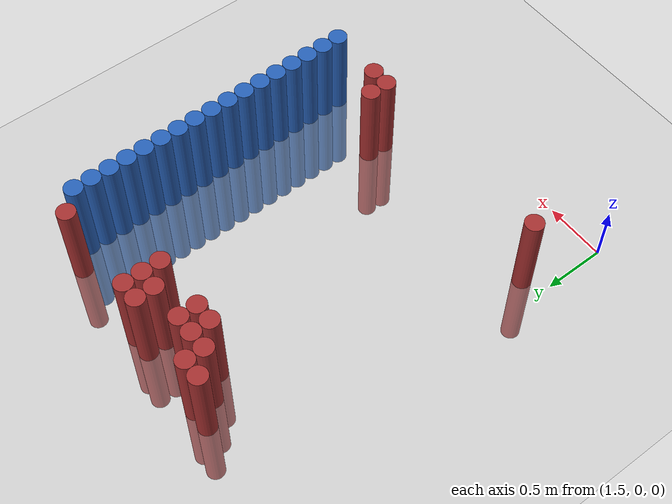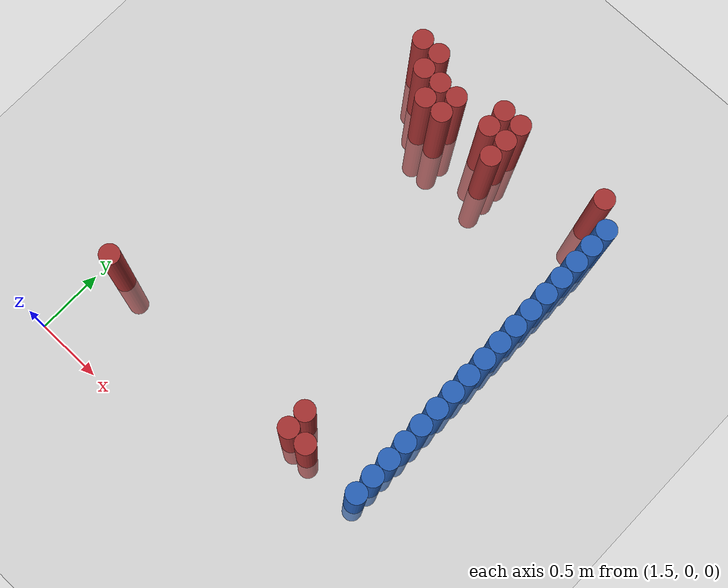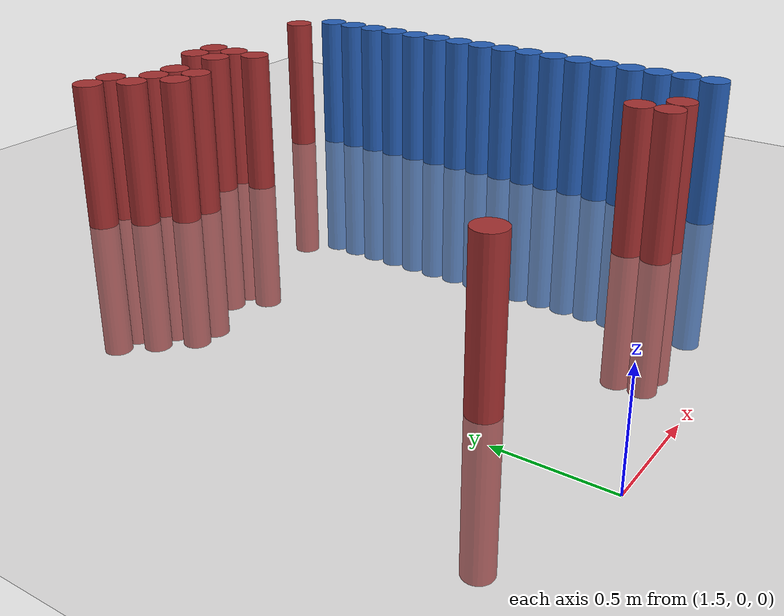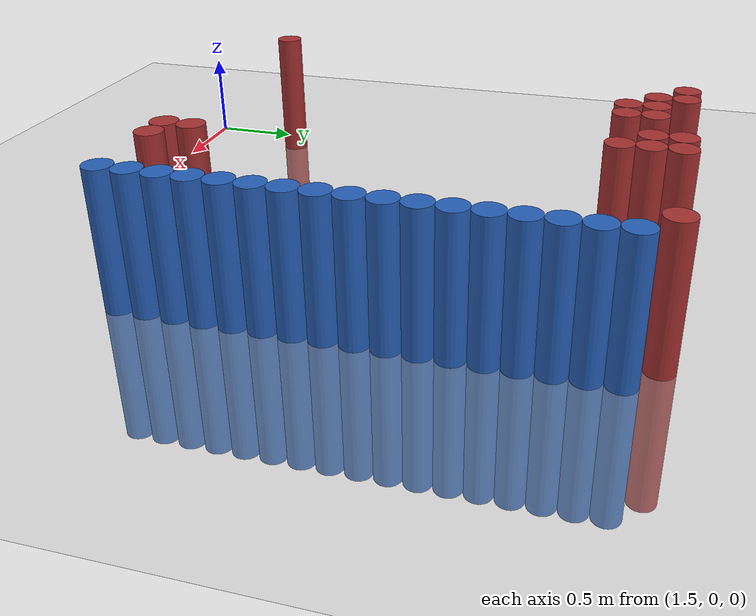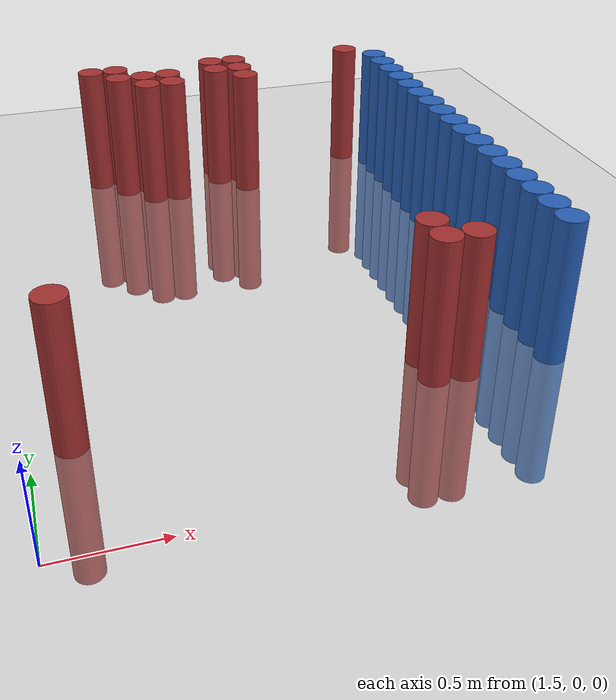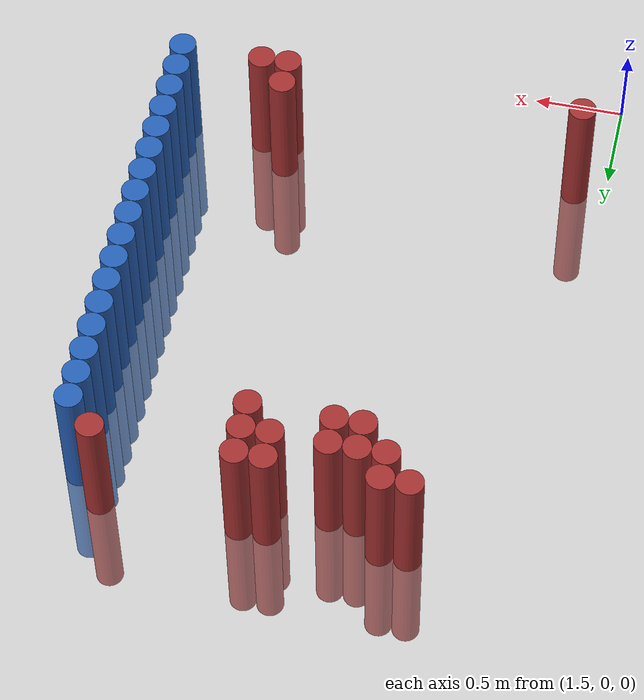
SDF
<sdf version="1.6">
 <world name="default">
  <model name="ground_plane">
   <static>1</static>
   <link name="link">
    <collision name="collision">
     <geometry><plane><normal>0 0 1</normal><size>100 100</size></plane></geometry>
     <surface><friction><ode><mu>100</mu><mu2>50</mu2></ode></friction></surface>
    </collision>
    <visual name="visual">
     <cast_shadows>0</cast_shadows>
     <geometry><plane><normal>0 0 1</normal><size>100 100</size></plane></geometry>
     <material>
      <script><uri>file://media/materials/scripts/gazebo.material</uri><name>Gazebo/Grey</name></script>
     </material>
    </visual>
   </link>
  </model>
  <model name="unit_cylinder_124">
   <static>1</static>
   <pose>3.925000 0.775000 0.000000 0.000000 0.000000 0.000000</pose>
   <link name="link">
    <inertial>
     <mass>1</mass>
     <inertia><ixx>0.145833</ixx><ixy>0</ixy><ixz>0</ixz><iyy>0.145833</iyy><iyz>0</iyz><izz>0.125</izz></inertia>
    </inertial>
    <collision name="collision">
     <geometry><cylinder><radius>0.075000</radius><length>1.5</length></cylinder></geometry>
    </collision>
    <visual name="visual">
     <geometry><cylinder><radius>0.075000</radius><length>1.5</length></cylinder></geometry>
     <material>
      <ambient>0.152000 0.379000 0.720000 1</ambient>
      <diffuse>0.152000 0.379000 0.720000 1</diffuse>
     </material>
     <material>
      <script><name>Gazebo/Grey</name><uri>file://media/materials/scripts/gazebo.material</uri></script>
     </material>
    </visual>
   </link>
  </model>
  <model name="unit_cylinder_126">
   <static>1</static>
   <pose>3.925000 0.925000 0.000000 0.000000 0.000000 0.000000</pose>
   <link name="link">
    <inertial>
     <mass>1</mass>
     <inertia><ixx>0.145833</ixx><ixy>0</ixy><ixz>0</ixz><iyy>0.145833</iyy><iyz>0</iyz><izz>0.125</izz></inertia>
    </inertial>
    <collision name="collision">
     <geometry><cylinder><radius>0.075000</radius><length>1.5</length></cylinder></geometry>
    </collision>
    <visual name="visual">
     <geometry><cylinder><radius>0.075000</radius><length>1.5</length></cylinder></geometry>
     <material>
      <ambient>0.152000 0.379000 0.720000 1</ambient>
      <diffuse>0.152000 0.379000 0.720000 1</diffuse>
     </material>
     <material>
      <script><name>Gazebo/Grey</name><uri>file://media/materials/scripts/gazebo.material</uri></script>
     </material>
    </visual>
   </link>
  </model>
  <model name="unit_cylinder_128">
   <static>1</static>
   <pose>3.925000 1.075000 0.000000 0.000000 0.000000 0.000000</pose>
   <link name="link">
    <inertial>
     <mass>1</mass>
     <inertia><ixx>0.145833</ixx><ixy>0</ixy><ixz>0</ixz><iyy>0.145833</iyy><iyz>0</iyz><izz>0.125</izz></inertia>
    </inertial>
    <collision name="collision">
     <geometry><cylinder><radius>0.075000</radius><length>1.5</length></cylinder></geometry>
    </collision>
    <visual name="visual">
     <geometry><cylinder><radius>0.075000</radius><length>1.5</length></cylinder></geometry>
     <material>
      <ambient>0.152000 0.379000 0.720000 1</ambient>
      <diffuse>0.152000 0.379000 0.720000 1</diffuse>
     </material>
     <material>
      <script><name>Gazebo/Grey</name><uri>file://media/materials/scripts/gazebo.material</uri></script>
     </material>
    </visual>
   </link>
  </model>
  <model name="unit_cylinder_130">
   <static>1</static>
   <pose>3.925000 1.225000 0.000000 0.000000 0.000000 0.000000</pose>
   <link name="link">
    <inertial>
     <mass>1</mass>
     <inertia><ixx>0.145833</ixx><ixy>0</ixy><ixz>0</ixz><iyy>0.145833</iyy><iyz>0</iyz><izz>0.125</izz></inertia>
    </inertial>
    <collision name="collision">
     <geometry><cylinder><radius>0.075000</radius><length>1.5</length></cylinder></geometry>
    </collision>
    <visual name="visual">
     <geometry><cylinder><radius>0.075000</radius><length>1.5</length></cylinder></geometry>
     <material>
      <ambient>0.152000 0.379000 0.720000 1</ambient>
      <diffuse>0.152000 0.379000 0.720000 1</diffuse>
     </material>
     <material>
      <script><name>Gazebo/Grey</name><uri>file://media/materials/scripts/gazebo.material</uri></script>
     </material>
    </visual>
   </link>
  </model>
  <model name="unit_cylinder_132">
   <static>1</static>
   <pose>3.925000 1.375000 0.000000 0.000000 0.000000 0.000000</pose>
   <link name="link">
    <inertial>
     <mass>1</mass>
     <inertia><ixx>0.145833</ixx><ixy>0</ixy><ixz>0</ixz><iyy>0.145833</iyy><iyz>0</iyz><izz>0.125</izz></inertia>
    </inertial>
    <collision name="collision">
     <geometry><cylinder><radius>0.075000</radius><length>1.5</length></cylinder></geometry>
    </collision>
    <visual name="visual">
     <geometry><cylinder><radius>0.075000</radius><length>1.5</length></cylinder></geometry>
     <material>
      <ambient>0.152000 0.379000 0.720000 1</ambient>
      <diffuse>0.152000 0.379000 0.720000 1</diffuse>
     </material>
     <material>
      <script><name>Gazebo/Grey</name><uri>file://media/materials/scripts/gazebo.material</uri></script>
     </material>
    </visual>
   </link>
  </model>
  <model name="unit_cylinder_134">
   <static>1</static>
   <pose>3.925000 1.525000 0.000000 0.000000 0.000000 0.000000</pose>
   <link name="link">
    <inertial>
     <mass>1</mass>
     <inertia><ixx>0.145833</ixx><ixy>0</ixy><ixz>0</ixz><iyy>0.145833</iyy><iyz>0</iyz><izz>0.125</izz></inertia>
    </inertial>
    <collision name="collision">
     <geometry><cylinder><radius>0.075000</radius><length>1.5</length></cylinder></geometry>
    </collision>
    <visual name="visual">
     <geometry><cylinder><radius>0.075000</radius><length>1.5</length></cylinder></geometry>
     <material>
      <ambient>0.152000 0.379000 0.720000 1</ambient>
      <diffuse>0.152000 0.379000 0.720000 1</diffuse>
     </material>
     <material>
      <script><name>Gazebo/Grey</name><uri>file://media/materials/scripts/gazebo.material</uri></script>
     </material>
    </visual>
   </link>
  </model>
  <model name="unit_cylinder_136">
   <static>1</static>
   <pose>3.925000 1.675000 0.000000 0.000000 0.000000 0.000000</pose>
   <link name="link">
    <inertial>
     <mass>1</mass>
     <inertia><ixx>0.145833</ixx><ixy>0</ixy><ixz>0</ixz><iyy>0.145833</iyy><iyz>0</iyz><izz>0.125</izz></inertia>
    </inertial>
    <collision name="collision">
     <geometry><cylinder><radius>0.075000</radius><length>1.5</length></cylinder></geometry>
    </collision>
    <visual name="visual">
     <geometry><cylinder><radius>0.075000</radius><length>1.5</length></cylinder></geometry>
     <material>
      <ambient>0.152000 0.379000 0.720000 1</ambient>
      <diffuse>0.152000 0.379000 0.720000 1</diffuse>
     </material>
     <material>
      <script><name>Gazebo/Grey</name><uri>file://media/materials/scripts/gazebo.material</uri></script>
     </material>
    </visual>
   </link>
  </model>
  <model name="unit_cylinder_138">
   <static>1</static>
   <pose>3.925000 1.825000 0.000000 0.000000 0.000000 0.000000</pose>
   <link name="link">
    <inertial>
     <mass>1</mass>
     <inertia><ixx>0.145833</ixx><ixy>0</ixy><ixz>0</ixz><iyy>0.145833</iyy><iyz>0</iyz><izz>0.125</izz></inertia>
    </inertial>
    <collision name="collision">
     <geometry><cylinder><radius>0.075000</radius><length>1.5</length></cylinder></geometry>
    </collision>
    <visual name="visual">
     <geometry><cylinder><radius>0.075000</radius><length>1.5</length></cylinder></geometry>
     <material>
      <ambient>0.152000 0.379000 0.720000 1</ambient>
      <diffuse>0.152000 0.379000 0.720000 1</diffuse>
     </material>
     <material>
      <script><name>Gazebo/Grey</name><uri>file://media/materials/scripts/gazebo.material</uri></script>
     </material>
    </visual>
   </link>
  </model>
  <model name="unit_cylinder_140">
   <static>1</static>
   <pose>3.925000 1.975000 0.000000 0.000000 0.000000 0.000000</pose>
   <link name="link">
    <inertial>
     <mass>1</mass>
     <inertia><ixx>0.145833</ixx><ixy>0</ixy><ixz>0</ixz><iyy>0.145833</iyy><iyz>0</iyz><izz>0.125</izz></inertia>
    </inertial>
    <collision name="collision">
     <geometry><cylinder><radius>0.075000</radius><length>1.5</length></cylinder></geometry>
    </collision>
    <visual name="visual">
     <geometry><cylinder><radius>0.075000</radius><length>1.5</length></cylinder></geometry>
     <material>
      <ambient>0.152000 0.379000 0.720000 1</ambient>
      <diffuse>0.152000 0.379000 0.720000 1</diffuse>
     </material>
     <material>
      <script><name>Gazebo/Grey</name><uri>file://media/materials/scripts/gazebo.material</uri></script>
     </material>
    </visual>
   </link>
  </model>
  <model name="unit_cylinder_142">
   <static>1</static>
   <pose>3.925000 2.125000 0.000000 0.000000 0.000000 0.000000</pose>
   <link name="link">
    <inertial>
     <mass>1</mass>
     <inertia><ixx>0.145833</ixx><ixy>0</ixy><ixz>0</ixz><iyy>0.145833</iyy><iyz>0</iyz><izz>0.125</izz></inertia>
    </inertial>
    <collision name="collision">
     <geometry><cylinder><radius>0.075000</radius><length>1.5</length></cylinder></geometry>
    </collision>
    <visual name="visual">
     <geometry><cylinder><radius>0.075000</radius><length>1.5</length></cylinder></geometry>
     <material>
      <ambient>0.152000 0.379000 0.720000 1</ambient>
      <diffuse>0.152000 0.379000 0.720000 1</diffuse>
     </material>
     <material>
      <script><name>Gazebo/Grey</name><uri>file://media/materials/scripts/gazebo.material</uri></script>
     </material>
    </visual>
   </link>
  </model>
  <model name="unit_cylinder_144">
   <static>1</static>
   <pose>3.925000 2.275000 0.000000 0.000000 0.000000 0.000000</pose>
   <link name="link">
    <inertial>
     <mass>1</mass>
     <inertia><ixx>0.145833</ixx><ixy>0</ixy><ixz>0</ixz><iyy>0.145833</iyy><iyz>0</iyz><izz>0.125</izz></inertia>
    </inertial>
    <collision name="collision">
     <geometry><cylinder><radius>0.075000</radius><length>1.5</length></cylinder></geometry>
    </collision>
    <visual name="visual">
     <geometry><cylinder><radius>0.075000</radius><length>1.5</length></cylinder></geometry>
     <material>
      <ambient>0.152000 0.379000 0.720000 1</ambient>
      <diffuse>0.152000 0.379000 0.720000 1</diffuse>
     </material>
     <material>
      <script><name>Gazebo/Grey</name><uri>file://media/materials/scripts/gazebo.material</uri></script>
     </material>
    </visual>
   </link>
  </model>
  <model name="unit_cylinder_146">
   <static>1</static>
   <pose>3.925000 2.425000 0.000000 0.000000 0.000000 0.000000</pose>
   <link name="link">
    <inertial>
     <mass>1</mass>
     <inertia><ixx>0.145833</ixx><ixy>0</ixy><ixz>0</ixz><iyy>0.145833</iyy><iyz>0</iyz><izz>0.125</izz></inertia>
    </inertial>
    <collision name="collision">
     <geometry><cylinder><radius>0.075000</radius><length>1.5</length></cylinder></geometry>
    </collision>
    <visual name="visual">
     <geometry><cylinder><radius>0.075000</radius><length>1.5</length></cylinder></geometry>
     <material>
      <ambient>0.152000 0.379000 0.720000 1</ambient>
      <diffuse>0.152000 0.379000 0.720000 1</diffuse>
     </material>
     <material>
      <script><name>Gazebo/Grey</name><uri>file://media/materials/scripts/gazebo.material</uri></script>
     </material>
    </visual>
   </link>
  </model>
  <model name="unit_cylinder_148">
   <static>1</static>
   <pose>3.925000 2.575000 0.000000 0.000000 0.000000 0.000000</pose>
   <link name="link">
    <inertial>
     <mass>1</mass>
     <inertia><ixx>0.145833</ixx><ixy>0</ixy><ixz>0</ixz><iyy>0.145833</iyy><iyz>0</iyz><izz>0.125</izz></inertia>
    </inertial>
    <collision name="collision">
     <geometry><cylinder><radius>0.075000</radius><length>1.5</length></cylinder></geometry>
    </collision>
    <visual name="visual">
     <geometry><cylinder><radius>0.075000</radius><length>1.5</length></cylinder></geometry>
     <material>
      <ambient>0.152000 0.379000 0.720000 1</ambient>
      <diffuse>0.152000 0.379000 0.720000 1</diffuse>
     </material>
     <material>
      <script><name>Gazebo/Grey</name><uri>file://media/materials/scripts/gazebo.material</uri></script>
     </material>
    </visual>
   </link>
  </model>
  <model name="unit_cylinder_150">
   <static>1</static>
   <pose>3.925000 2.725000 0.000000 0.000000 0.000000 0.000000</pose>
   <link name="link">
    <inertial>
     <mass>1</mass>
     <inertia><ixx>0.145833</ixx><ixy>0</ixy><ixz>0</ixz><iyy>0.145833</iyy><iyz>0</iyz><izz>0.125</izz></inertia>
    </inertial>
    <collision name="collision">
     <geometry><cylinder><radius>0.075000</radius><length>1.5</length></cylinder></geometry>
    </collision>
    <visual name="visual">
     <geometry><cylinder><radius>0.075000</radius><length>1.5</length></cylinder></geometry>
     <material>
      <ambient>0.152000 0.379000 0.720000 1</ambient>
      <diffuse>0.152000 0.379000 0.720000 1</diffuse>
     </material>
     <material>
      <script><name>Gazebo/Grey</name><uri>file://media/materials/scripts/gazebo.material</uri></script>
     </material>
    </visual>
   </link>
  </model>
  <model name="unit_cylinder_152">
   <static>1</static>
   <pose>3.925000 2.875000 0.000000 0.000000 0.000000 0.000000</pose>
   <link name="link">
    <inertial>
     <mass>1</mass>
     <inertia><ixx>0.145833</ixx><ixy>0</ixy><ixz>0</ixz><iyy>0.145833</iyy><iyz>0</iyz><izz>0.125</izz></inertia>
    </inertial>
    <collision name="collision">
     <geometry><cylinder><radius>0.075000</radius><length>1.5</length></cylinder></geometry>
    </collision>
    <visual name="visual">
     <geometry><cylinder><radius>0.075000</radius><length>1.5</length></cylinder></geometry>
     <material>
      <ambient>0.152000 0.379000 0.720000 1</ambient>
      <diffuse>0.152000 0.379000 0.720000 1</diffuse>
     </material>
     <material>
      <script><name>Gazebo/Grey</name><uri>file://media/materials/scripts/gazebo.material</uri></script>
     </material>
    </visual>
   </link>
  </model>
  <model name="unit_cylinder_154">
   <static>1</static>
   <pose>3.925000 3.025000 0.000000 0.000000 0.000000 0.000000</pose>
   <link name="link">
    <inertial>
     <mass>1</mass>
     <inertia><ixx>0.145833</ixx><ixy>0</ixy><ixz>0</ixz><iyy>0.145833</iyy><iyz>0</iyz><izz>0.125</izz></inertia>
    </inertial>
    <collision name="collision">
     <geometry><cylinder><radius>0.075000</radius><length>1.5</length></cylinder></geometry>
    </collision>
    <visual name="visual">
     <geometry><cylinder><radius>0.075000</radius><length>1.5</length></cylinder></geometry>
     <material>
      <ambient>0.152000 0.379000 0.720000 1</ambient>
      <diffuse>0.152000 0.379000 0.720000 1</diffuse>
     </material>
     <material>
      <script><name>Gazebo/Grey</name><uri>file://media/materials/scripts/gazebo.material</uri></script>
     </material>
    </visual>
   </link>
  </model>
  <model name="unit_cylinder_426">
   <static>1</static>
   <pose>1.675000 0.625000 0.000000 0.000000 0.000000 0.000000</pose>
   <link name="link">
    <inertial>
     <mass>1</mass>
     <inertia><ixx>0.145833</ixx><ixy>0</ixy><ixz>0</ixz><iyy>0.145833</iyy><iyz>0</iyz><izz>0.125</izz></inertia>
    </inertial>
    <collision name="collision">
     <geometry><cylinder><radius>0.075000</radius><length>1.5</length></cylinder></geometry>
    </collision>
    <visual name="visual">
     <geometry><cylinder><radius>0.075000</radius><length>1.5</length></cylinder></geometry>
     <material>
      <ambient>0.648000 0.192000 0.192000 1</ambient>
      <diffuse>0.648000 0.192000 0.192000 1</diffuse>
     </material>
     <material>
      <script><name>Gazebo/Grey</name><uri>file://media/materials/scripts/gazebo.material</uri></script>
     </material>
    </visual>
   </link>
  </model>
  <model name="unit_cylinder_427">
   <static>1</static>
   <pose>2.125000 3.175000 0.000000 0.000000 0.000000 0.000000</pose>
   <link name="link">
    <inertial>
     <mass>1</mass>
     <inertia><ixx>0.145833</ixx><ixy>0</ixy><ixz>0</ixz><iyy>0.145833</iyy><iyz>0</iyz><izz>0.125</izz></inertia>
    </inertial>
    <collision name="collision">
     <geometry><cylinder><radius>0.075000</radius><length>1.5</length></cylinder></geometry>
    </collision>
    <visual name="visual">
     <geometry><cylinder><radius>0.075000</radius><length>1.5</length></cylinder></geometry>
     <material>
      <ambient>0.648000 0.192000 0.192000 1</ambient>
      <diffuse>0.648000 0.192000 0.192000 1</diffuse>
     </material>
     <material>
      <script><name>Gazebo/Grey</name><uri>file://media/materials/scripts/gazebo.material</uri></script>
     </material>
    </visual>
   </link>
  </model>
  <model name="unit_cylinder_428">
   <static>1</static>
   <pose>2.275000 3.025000 0.000000 0.000000 0.000000 0.000000</pose>
   <link name="link">
    <inertial>
     <mass>1</mass>
     <inertia><ixx>0.145833</ixx><ixy>0</ixy><ixz>0</ixz><iyy>0.145833</iyy><iyz>0</iyz><izz>0.125</izz></inertia>
    </inertial>
    <collision name="collision">
     <geometry><cylinder><radius>0.075000</radius><length>1.5</length></cylinder></geometry>
    </collision>
    <visual name="visual">
     <geometry><cylinder><radius>0.075000</radius><length>1.5</length></cylinder></geometry>
     <material>
      <ambient>0.648000 0.192000 0.192000 1</ambient>
      <diffuse>0.648000 0.192000 0.192000 1</diffuse>
     </material>
     <material>
      <script><name>Gazebo/Grey</name><uri>file://media/materials/scripts/gazebo.material</uri></script>
     </material>
    </visual>
   </link>
  </model>
  <model name="unit_cylinder_429">
   <static>1</static>
   <pose>2.275000 3.175000 0.000000 0.000000 0.000000 0.000000</pose>
   <link name="link">
    <inertial>
     <mass>1</mass>
     <inertia><ixx>0.145833</ixx><ixy>0</ixy><ixz>0</ixz><iyy>0.145833</iyy><iyz>0</iyz><izz>0.125</izz></inertia>
    </inertial>
    <collision name="collision">
     <geometry><cylinder><radius>0.075000</radius><length>1.5</length></cylinder></geometry>
    </collision>
    <visual name="visual">
     <geometry><cylinder><radius>0.075000</radius><length>1.5</length></cylinder></geometry>
     <material>
      <ambient>0.648000 0.192000 0.192000 1</ambient>
      <diffuse>0.648000 0.192000 0.192000 1</diffuse>
     </material>
     <material>
      <script><name>Gazebo/Grey</name><uri>file://media/materials/scripts/gazebo.material</uri></script>
     </material>
    </visual>
   </link>
  </model>
  <model name="unit_cylinder_430">
   <static>1</static>
   <pose>2.425000 2.875000 0.000000 0.000000 0.000000 0.000000</pose>
   <link name="link">
    <inertial>
     <mass>1</mass>
     <inertia><ixx>0.145833</ixx><ixy>0</ixy><ixz>0</ixz><iyy>0.145833</iyy><iyz>0</iyz><izz>0.125</izz></inertia>
    </inertial>
    <collision name="collision">
     <geometry><cylinder><radius>0.075000</radius><length>1.5</length></cylinder></geometry>
    </collision>
    <visual name="visual">
     <geometry><cylinder><radius>0.075000</radius><length>1.5</length></cylinder></geometry>
     <material>
      <ambient>0.648000 0.192000 0.192000 1</ambient>
      <diffuse>0.648000 0.192000 0.192000 1</diffuse>
     </material>
     <material>
      <script><name>Gazebo/Grey</name><uri>file://media/materials/scripts/gazebo.material</uri></script>
     </material>
    </visual>
   </link>
  </model>
  <model name="unit_cylinder_431">
   <static>1</static>
   <pose>2.425000 3.025000 0.000000 0.000000 0.000000 0.000000</pose>
   <link name="link">
    <inertial>
     <mass>1</mass>
     <inertia><ixx>0.145833</ixx><ixy>0</ixy><ixz>0</ixz><iyy>0.145833</iyy><iyz>0</iyz><izz>0.125</izz></inertia>
    </inertial>
    <collision name="collision">
     <geometry><cylinder><radius>0.075000</radius><length>1.5</length></cylinder></geometry>
    </collision>
    <visual name="visual">
     <geometry><cylinder><radius>0.075000</radius><length>1.5</length></cylinder></geometry>
     <material>
      <ambient>0.648000 0.192000 0.192000 1</ambient>
      <diffuse>0.648000 0.192000 0.192000 1</diffuse>
     </material>
     <material>
      <script><name>Gazebo/Grey</name><uri>file://media/materials/scripts/gazebo.material</uri></script>
     </material>
    </visual>
   </link>
  </model>
  <model name="unit_cylinder_432">
   <static>1</static>
   <pose>2.575000 2.875000 0.000000 0.000000 0.000000 0.000000</pose>
   <link name="link">
    <inertial>
     <mass>1</mass>
     <inertia><ixx>0.145833</ixx><ixy>0</ixy><ixz>0</ixz><iyy>0.145833</iyy><iyz>0</iyz><izz>0.125</izz></inertia>
    </inertial>
    <collision name="collision">
     <geometry><cylinder><radius>0.075000</radius><length>1.5</length></cylinder></geometry>
    </collision>
    <visual name="visual">
     <geometry><cylinder><radius>0.075000</radius><length>1.5</length></cylinder></geometry>
     <material>
      <ambient>0.648000 0.192000 0.192000 1</ambient>
      <diffuse>0.648000 0.192000 0.192000 1</diffuse>
     </material>
     <material>
      <script><name>Gazebo/Grey</name><uri>file://media/materials/scripts/gazebo.material</uri></script>
     </material>
    </visual>
   </link>
  </model>
  <model name="unit_cylinder_433">
   <static>1</static>
   <pose>2.575000 3.025000 0.000000 0.000000 0.000000 0.000000</pose>
   <link name="link">
    <inertial>
     <mass>1</mass>
     <inertia><ixx>0.145833</ixx><ixy>0</ixy><ixz>0</ixz><iyy>0.145833</iyy><iyz>0</iyz><izz>0.125</izz></inertia>
    </inertial>
    <collision name="collision">
     <geometry><cylinder><radius>0.075000</radius><length>1.5</length></cylinder></geometry>
    </collision>
    <visual name="visual">
     <geometry><cylinder><radius>0.075000</radius><length>1.5</length></cylinder></geometry>
     <material>
      <ambient>0.648000 0.192000 0.192000 1</ambient>
      <diffuse>0.648000 0.192000 0.192000 1</diffuse>
     </material>
     <material>
      <script><name>Gazebo/Grey</name><uri>file://media/materials/scripts/gazebo.material</uri></script>
     </material>
    </visual>
   </link>
  </model>
  <model name="unit_cylinder_434">
   <static>1</static>
   <pose>2.875000 3.025000 0.000000 0.000000 0.000000 0.000000</pose>
   <link name="link">
    <inertial>
     <mass>1</mass>
     <inertia><ixx>0.145833</ixx><ixy>0</ixy><ixz>0</ixz><iyy>0.145833</iyy><iyz>0</iyz><izz>0.125</izz></inertia>
    </inertial>
    <collision name="collision">
     <geometry><cylinder><radius>0.075000</radius><length>1.5</length></cylinder></geometry>
    </collision>
    <visual name="visual">
     <geometry><cylinder><radius>0.075000</radius><length>1.5</length></cylinder></geometry>
     <material>
      <ambient>0.648000 0.192000 0.192000 1</ambient>
      <diffuse>0.648000 0.192000 0.192000 1</diffuse>
     </material>
     <material>
      <script><name>Gazebo/Grey</name><uri>file://media/materials/scripts/gazebo.material</uri></script>
     </material>
    </visual>
   </link>
  </model>
  <model name="unit_cylinder_435">
   <static>1</static>
   <pose>2.875000 3.175000 0.000000 0.000000 0.000000 0.000000</pose>
   <link name="link">
    <inertial>
     <mass>1</mass>
     <inertia><ixx>0.145833</ixx><ixy>0</ixy><ixz>0</ixz><iyy>0.145833</iyy><iyz>0</iyz><izz>0.125</izz></inertia>
    </inertial>
    <collision name="collision">
     <geometry><cylinder><radius>0.075000</radius><length>1.5</length></cylinder></geometry>
    </collision>
    <visual name="visual">
     <geometry><cylinder><radius>0.075000</radius><length>1.5</length></cylinder></geometry>
     <material>
      <ambient>0.648000 0.192000 0.192000 1</ambient>
      <diffuse>0.648000 0.192000 0.192000 1</diffuse>
     </material>
     <material>
      <script><name>Gazebo/Grey</name><uri>file://media/materials/scripts/gazebo.material</uri></script>
     </material>
    </visual>
   </link>
  </model>
  <model name="unit_cylinder_437">
   <static>1</static>
   <pose>3.025000 2.875000 0.000000 0.000000 0.000000 0.000000</pose>
   <link name="link">
    <inertial>
     <mass>1</mass>
     <inertia><ixx>0.145833</ixx><ixy>0</ixy><ixz>0</ixz><iyy>0.145833</iyy><iyz>0</iyz><izz>0.125</izz></inertia>
    </inertial>
    <collision name="collision">
     <geometry><cylinder><radius>0.075000</radius><length>1.5</length></cylinder></geometry>
    </collision>
    <visual name="visual">
     <geometry><cylinder><radius>0.075000</radius><length>1.5</length></cylinder></geometry>
     <material>
      <ambient>0.648000 0.192000 0.192000 1</ambient>
      <diffuse>0.648000 0.192000 0.192000 1</diffuse>
     </material>
     <material>
      <script><name>Gazebo/Grey</name><uri>file://media/materials/scripts/gazebo.material</uri></script>
     </material>
    </visual>
   </link>
  </model>
  <model name="unit_cylinder_438">
   <static>1</static>
   <pose>3.025000 3.025000 0.000000 0.000000 0.000000 0.000000</pose>
   <link name="link">
    <inertial>
     <mass>1</mass>
     <inertia><ixx>0.145833</ixx><ixy>0</ixy><ixz>0</ixz><iyy>0.145833</iyy><iyz>0</iyz><izz>0.125</izz></inertia>
    </inertial>
    <collision name="collision">
     <geometry><cylinder><radius>0.075000</radius><length>1.5</length></cylinder></geometry>
    </collision>
    <visual name="visual">
     <geometry><cylinder><radius>0.075000</radius><length>1.5</length></cylinder></geometry>
     <material>
      <ambient>0.648000 0.192000 0.192000 1</ambient>
      <diffuse>0.648000 0.192000 0.192000 1</diffuse>
     </material>
     <material>
      <script><name>Gazebo/Grey</name><uri>file://media/materials/scripts/gazebo.material</uri></script>
     </material>
    </visual>
   </link>
  </model>
  <model name="unit_cylinder_439">
   <static>1</static>
   <pose>3.025000 3.175000 0.000000 0.000000 0.000000 0.000000</pose>
   <link name="link">
    <inertial>
     <mass>1</mass>
     <inertia><ixx>0.145833</ixx><ixy>0</ixy><ixz>0</ixz><iyy>0.145833</iyy><iyz>0</iyz><izz>0.125</izz></inertia>
    </inertial>
    <collision name="collision">
     <geometry><cylinder><radius>0.075000</radius><length>1.5</length></cylinder></geometry>
    </collision>
    <visual name="visual">
     <geometry><cylinder><radius>0.075000</radius><length>1.5</length></cylinder></geometry>
     <material>
      <ambient>0.648000 0.192000 0.192000 1</ambient>
      <diffuse>0.648000 0.192000 0.192000 1</diffuse>
     </material>
     <material>
      <script><name>Gazebo/Grey</name><uri>file://media/materials/scripts/gazebo.material</uri></script>
     </material>
    </visual>
   </link>
  </model>
  <model name="unit_cylinder_441">
   <static>1</static>
   <pose>3.325000 0.625000 0.000000 0.000000 0.000000 0.000000</pose>
   <link name="link">
    <inertial>
     <mass>1</mass>
     <inertia><ixx>0.145833</ixx><ixy>0</ixy><ixz>0</ixz><iyy>0.145833</iyy><iyz>0</iyz><izz>0.125</izz></inertia>
    </inertial>
    <collision name="collision">
     <geometry><cylinder><radius>0.075000</radius><length>1.5</length></cylinder></geometry>
    </collision>
    <visual name="visual">
     <geometry><cylinder><radius>0.075000</radius><length>1.5</length></cylinder></geometry>
     <material>
      <ambient>0.648000 0.192000 0.192000 1</ambient>
      <diffuse>0.648000 0.192000 0.192000 1</diffuse>
     </material>
     <material>
      <script><name>Gazebo/Grey</name><uri>file://media/materials/scripts/gazebo.material</uri></script>
     </material>
    </visual>
   </link>
  </model>
  <model name="unit_cylinder_442">
   <static>1</static>
   <pose>3.325000 0.775000 0.000000 0.000000 0.000000 0.000000</pose>
   <link name="link">
    <inertial>
     <mass>1</mass>
     <inertia><ixx>0.145833</ixx><ixy>0</ixy><ixz>0</ixz><iyy>0.145833</iyy><iyz>0</iyz><izz>0.125</izz></inertia>
    </inertial>
    <collision name="collision">
     <geometry><cylinder><radius>0.075000</radius><length>1.5</length></cylinder></geometry>
    </collision>
    <visual name="visual">
     <geometry><cylinder><radius>0.075000</radius><length>1.5</length></cylinder></geometry>
     <material>
      <ambient>0.648000 0.192000 0.192000 1</ambient>
      <diffuse>0.648000 0.192000 0.192000 1</diffuse>
     </material>
     <material>
      <script><name>Gazebo/Grey</name><uri>file://media/materials/scripts/gazebo.material</uri></script>
     </material>
    </visual>
   </link>
  </model>
  <model name="unit_cylinder_445">
   <static>1</static>
   <pose>3.475000 0.625000 0.000000 0.000000 0.000000 0.000000</pose>
   <link name="link">
    <inertial>
     <mass>1</mass>
     <inertia><ixx>0.145833</ixx><ixy>0</ixy><ixz>0</ixz><iyy>0.145833</iyy><iyz>0</iyz><izz>0.125</izz></inertia>
    </inertial>
    <collision name="collision">
     <geometry><cylinder><radius>0.075000</radius><length>1.5</length></cylinder></geometry>
    </collision>
    <visual name="visual">
     <geometry><cylinder><radius>0.075000</radius><length>1.5</length></cylinder></geometry>
     <material>
      <ambient>0.648000 0.192000 0.192000 1</ambient>
      <diffuse>0.648000 0.192000 0.192000 1</diffuse>
     </material>
     <material>
      <script><name>Gazebo/Grey</name><uri>file://media/materials/scripts/gazebo.material</uri></script>
     </material>
    </visual>
   </link>
  </model>
  <model name="unit_cylinder_449">
   <static>1</static>
   <pose>3.775000 3.175000 0.000000 0.000000 0.000000 0.000000</pose>
   <link name="link">
    <inertial>
     <mass>1</mass>
     <inertia><ixx>0.145833</ixx><ixy>0</ixy><ixz>0</ixz><iyy>0.145833</iyy><iyz>0</iyz><izz>0.125</izz></inertia>
    </inertial>
    <collision name="collision">
     <geometry><cylinder><radius>0.075000</radius><length>1.5</length></cylinder></geometry>
    </collision>
    <visual name="visual">
     <geometry><cylinder><radius>0.075000</radius><length>1.5</length></cylinder></geometry>
     <material>
      <ambient>0.648000 0.192000 0.192000 1</ambient>
      <diffuse>0.648000 0.192000 0.192000 1</diffuse>
     </material>
     <material>
      <script><name>Gazebo/Grey</name><uri>file://media/materials/scripts/gazebo.material</uri></script>
     </material>
    </visual>
   </link>
  </model>
  <model name="unit_cylinder_472">
   <static>1</static>
   <pose>3.925000 0.625000 0.000000 0.000000 0.000000 0.000000</pose>
   <link name="link">
    <inertial>
     <mass>1</mass>
     <inertia><ixx>0.145833</ixx><ixy>0</ixy><ixz>0</ixz><iyy>0.145833</iyy><iyz>0</iyz><izz>0.125</izz></inertia>
    </inertial>
    <collision name="collision">
     <geometry><cylinder><radius>0.075000</radius><length>1.5</length></cylinder></geometry>
    </collision>
    <visual name="visual">
     <geometry><cylinder><radius>0.075000</radius><length>1.5</length></cylinder></geometry>
     <material>
      <ambient>0.152000 0.379000 0.720000 1</ambient>
      <diffuse>0.152000 0.379000 0.720000 1</diffuse>
     </material>
     <material>
      <script><name>Gazebo/Grey</name><uri>file://media/materials/scripts/gazebo.material</uri></script>
     </material>
    </visual>
   </link>
  </model>
  <model name="unit_cylinder_473">
   <static>1</static>
   <pose>3.925000 0.775000 0.000000 0.000000 0.000000 0.000000</pose>
   <link name="link">
    <inertial>
     <mass>1</mass>
     <inertia><ixx>0.145833</ixx><ixy>0</ixy><ixz>0</ixz><iyy>0.145833</iyy><iyz>0</iyz><izz>0.125</izz></inertia>
    </inertial>
    <collision name="collision">
     <geometry><cylinder><radius>0.075000</radius><length>1.5</length></cylinder></geometry>
    </collision>
    <visual name="visual">
     <geometry><cylinder><radius>0.075000</radius><length>1.5</length></cylinder></geometry>
     <material>
      <ambient>0.152000 0.379000 0.720000 1</ambient>
      <diffuse>0.152000 0.379000 0.720000 1</diffuse>
     </material>
     <material>
      <script><name>Gazebo/Grey</name><uri>file://media/materials/scripts/gazebo.material</uri></script>
     </material>
    </visual>
   </link>
  </model>
  <model name="unit_cylinder_474">
   <static>1</static>
   <pose>3.925000 0.925000 0.000000 0.000000 0.000000 0.000000</pose>
   <link name="link">
    <inertial>
     <mass>1</mass>
     <inertia><ixx>0.145833</ixx><ixy>0</ixy><ixz>0</ixz><iyy>0.145833</iyy><iyz>0</iyz><izz>0.125</izz></inertia>
    </inertial>
    <collision name="collision">
     <geometry><cylinder><radius>0.075000</radius><length>1.5</length></cylinder></geometry>
    </collision>
    <visual name="visual">
     <geometry><cylinder><radius>0.075000</radius><length>1.5</length></cylinder></geometry>
     <material>
      <ambient>0.152000 0.379000 0.720000 1</ambient>
      <diffuse>0.152000 0.379000 0.720000 1</diffuse>
     </material>
     <material>
      <script><name>Gazebo/Grey</name><uri>file://media/materials/scripts/gazebo.material</uri></script>
     </material>
    </visual>
   </link>
  </model>
  <model name="unit_cylinder_475">
   <static>1</static>
   <pose>3.925000 1.075000 0.000000 0.000000 0.000000 0.000000</pose>
   <link name="link">
    <inertial>
     <mass>1</mass>
     <inertia><ixx>0.145833</ixx><ixy>0</ixy><ixz>0</ixz><iyy>0.145833</iyy><iyz>0</iyz><izz>0.125</izz></inertia>
    </inertial>
    <collision name="collision">
     <geometry><cylinder><radius>0.075000</radius><length>1.5</length></cylinder></geometry>
    </collision>
    <visual name="visual">
     <geometry><cylinder><radius>0.075000</radius><length>1.5</length></cylinder></geometry>
     <material>
      <ambient>0.152000 0.379000 0.720000 1</ambient>
      <diffuse>0.152000 0.379000 0.720000 1</diffuse>
     </material>
     <material>
      <script><name>Gazebo/Grey</name><uri>file://media/materials/scripts/gazebo.material</uri></script>
     </material>
    </visual>
   </link>
  </model>
  <model name="unit_cylinder_476">
   <static>1</static>
   <pose>3.925000 1.225000 0.000000 0.000000 0.000000 0.000000</pose>
   <link name="link">
    <inertial>
     <mass>1</mass>
     <inertia><ixx>0.145833</ixx><ixy>0</ixy><ixz>0</ixz><iyy>0.145833</iyy><iyz>0</iyz><izz>0.125</izz></inertia>
    </inertial>
    <collision name="collision">
     <geometry><cylinder><radius>0.075000</radius><length>1.5</length></cylinder></geometry>
    </collision>
    <visual name="visual">
     <geometry><cylinder><radius>0.075000</radius><length>1.5</length></cylinder></geometry>
     <material>
      <ambient>0.152000 0.379000 0.720000 1</ambient>
      <diffuse>0.152000 0.379000 0.720000 1</diffuse>
     </material>
     <material>
      <script><name>Gazebo/Grey</name><uri>file://media/materials/scripts/gazebo.material</uri></script>
     </material>
    </visual>
   </link>
  </model>
  <model name="unit_cylinder_477">
   <static>1</static>
   <pose>3.925000 1.375000 0.000000 0.000000 0.000000 0.000000</pose>
   <link name="link">
    <inertial>
     <mass>1</mass>
     <inertia><ixx>0.145833</ixx><ixy>0</ixy><ixz>0</ixz><iyy>0.145833</iyy><iyz>0</iyz><izz>0.125</izz></inertia>
    </inertial>
    <collision name="collision">
     <geometry><cylinder><radius>0.075000</radius><length>1.5</length></cylinder></geometry>
    </collision>
    <visual name="visual">
     <geometry><cylinder><radius>0.075000</radius><length>1.5</length></cylinder></geometry>
     <material>
      <ambient>0.152000 0.379000 0.720000 1</ambient>
      <diffuse>0.152000 0.379000 0.720000 1</diffuse>
     </material>
     <material>
      <script><name>Gazebo/Grey</name><uri>file://media/materials/scripts/gazebo.material</uri></script>
     </material>
    </visual>
   </link>
  </model>
  <model name="unit_cylinder_478">
   <static>1</static>
   <pose>3.925000 1.525000 0.000000 0.000000 0.000000 0.000000</pose>
   <link name="link">
    <inertial>
     <mass>1</mass>
     <inertia><ixx>0.145833</ixx><ixy>0</ixy><ixz>0</ixz><iyy>0.145833</iyy><iyz>0</iyz><izz>0.125</izz></inertia>
    </inertial>
    <collision name="collision">
     <geometry><cylinder><radius>0.075000</radius><length>1.5</length></cylinder></geometry>
    </collision>
    <visual name="visual">
     <geometry><cylinder><radius>0.075000</radius><length>1.5</length></cylinder></geometry>
     <material>
      <ambient>0.152000 0.379000 0.720000 1</ambient>
      <diffuse>0.152000 0.379000 0.720000 1</diffuse>
     </material>
     <material>
      <script><name>Gazebo/Grey</name><uri>file://media/materials/scripts/gazebo.material</uri></script>
     </material>
    </visual>
   </link>
  </model>
  <model name="unit_cylinder_479">
   <static>1</static>
   <pose>3.925000 1.675000 0.000000 0.000000 0.000000 0.000000</pose>
   <link name="link">
    <inertial>
     <mass>1</mass>
     <inertia><ixx>0.145833</ixx><ixy>0</ixy><ixz>0</ixz><iyy>0.145833</iyy><iyz>0</iyz><izz>0.125</izz></inertia>
    </inertial>
    <collision name="collision">
     <geometry><cylinder><radius>0.075000</radius><length>1.5</length></cylinder></geometry>
    </collision>
    <visual name="visual">
     <geometry><cylinder><radius>0.075000</radius><length>1.5</length></cylinder></geometry>
     <material>
      <ambient>0.152000 0.379000 0.720000 1</ambient>
      <diffuse>0.152000 0.379000 0.720000 1</diffuse>
     </material>
     <material>
      <script><name>Gazebo/Grey</name><uri>file://media/materials/scripts/gazebo.material</uri></script>
     </material>
    </visual>
   </link>
  </model>
  <model name="unit_cylinder_480">
   <static>1</static>
   <pose>3.925000 1.825000 0.000000 0.000000 0.000000 0.000000</pose>
   <link name="link">
    <inertial>
     <mass>1</mass>
     <inertia><ixx>0.145833</ixx><ixy>0</ixy><ixz>0</ixz><iyy>0.145833</iyy><iyz>0</iyz><izz>0.125</izz></inertia>
    </inertial>
    <collision name="collision">
     <geometry><cylinder><radius>0.075000</radius><length>1.5</length></cylinder></geometry>
    </collision>
    <visual name="visual">
     <geometry><cylinder><radius>0.075000</radius><length>1.5</length></cylinder></geometry>
     <material>
      <ambient>0.152000 0.379000 0.720000 1</ambient>
      <diffuse>0.152000 0.379000 0.720000 1</diffuse>
     </material>
     <material>
      <script><name>Gazebo/Grey</name><uri>file://media/materials/scripts/gazebo.material</uri></script>
     </material>
    </visual>
   </link>
  </model>
  <model name="unit_cylinder_481">
   <static>1</static>
   <pose>3.925000 1.975000 0.000000 0.000000 0.000000 0.000000</pose>
   <link name="link">
    <inertial>
     <mass>1</mass>
     <inertia><ixx>0.145833</ixx><ixy>0</ixy><ixz>0</ixz><iyy>0.145833</iyy><iyz>0</iyz><izz>0.125</izz></inertia>
    </inertial>
    <collision name="collision">
     <geometry><cylinder><radius>0.075000</radius><length>1.5</length></cylinder></geometry>
    </collision>
    <visual name="visual">
     <geometry><cylinder><radius>0.075000</radius><length>1.5</length></cylinder></geometry>
     <material>
      <ambient>0.152000 0.379000 0.720000 1</ambient>
      <diffuse>0.152000 0.379000 0.720000 1</diffuse>
     </material>
     <material>
      <script><name>Gazebo/Grey</name><uri>file://media/materials/scripts/gazebo.material</uri></script>
     </material>
    </visual>
   </link>
  </model>
  <model name="unit_cylinder_482">
   <static>1</static>
   <pose>3.925000 2.125000 0.000000 0.000000 0.000000 0.000000</pose>
   <link name="link">
    <inertial>
     <mass>1</mass>
     <inertia><ixx>0.145833</ixx><ixy>0</ixy><ixz>0</ixz><iyy>0.145833</iyy><iyz>0</iyz><izz>0.125</izz></inertia>
    </inertial>
    <collision name="collision">
     <geometry><cylinder><radius>0.075000</radius><length>1.5</length></cylinder></geometry>
    </collision>
    <visual name="visual">
     <geometry><cylinder><radius>0.075000</radius><length>1.5</length></cylinder></geometry>
     <material>
      <ambient>0.152000 0.379000 0.720000 1</ambient>
      <diffuse>0.152000 0.379000 0.720000 1</diffuse>
     </material>
     <material>
      <script><name>Gazebo/Grey</name><uri>file://media/materials/scripts/gazebo.material</uri></script>
     </material>
    </visual>
   </link>
  </model>
  <model name="unit_cylinder_483">
   <static>1</static>
   <pose>3.925000 2.275000 0.000000 0.000000 0.000000 0.000000</pose>
   <link name="link">
    <inertial>
     <mass>1</mass>
     <inertia><ixx>0.145833</ixx><ixy>0</ixy><ixz>0</ixz><iyy>0.145833</iyy><iyz>0</iyz><izz>0.125</izz></inertia>
    </inertial>
    <collision name="collision">
     <geometry><cylinder><radius>0.075000</radius><length>1.5</length></cylinder></geometry>
    </collision>
    <visual name="visual">
     <geometry><cylinder><radius>0.075000</radius><length>1.5</length></cylinder></geometry>
     <material>
      <ambient>0.152000 0.379000 0.720000 1</ambient>
      <diffuse>0.152000 0.379000 0.720000 1</diffuse>
     </material>
     <material>
      <script><name>Gazebo/Grey</name><uri>file://media/materials/scripts/gazebo.material</uri></script>
     </material>
    </visual>
   </link>
  </model>
  <model name="unit_cylinder_484">
   <static>1</static>
   <pose>3.925000 2.425000 0.000000 0.000000 0.000000 0.000000</pose>
   <link name="link">
    <inertial>
     <mass>1</mass>
     <inertia><ixx>0.145833</ixx><ixy>0</ixy><ixz>0</ixz><iyy>0.145833</iyy><iyz>0</iyz><izz>0.125</izz></inertia>
    </inertial>
    <collision name="collision">
     <geometry><cylinder><radius>0.075000</radius><length>1.5</length></cylinder></geometry>
    </collision>
    <visual name="visual">
     <geometry><cylinder><radius>0.075000</radius><length>1.5</length></cylinder></geometry>
     <material>
      <ambient>0.152000 0.379000 0.720000 1</ambient>
      <diffuse>0.152000 0.379000 0.720000 1</diffuse>
     </material>
     <material>
      <script><name>Gazebo/Grey</name><uri>file://media/materials/scripts/gazebo.material</uri></script>
     </material>
    </visual>
   </link>
  </model>
  <model name="unit_cylinder_485">
   <static>1</static>
   <pose>3.925000 2.575000 0.000000 0.000000 0.000000 0.000000</pose>
   <link name="link">
    <inertial>
     <mass>1</mass>
     <inertia><ixx>0.145833</ixx><ixy>0</ixy><ixz>0</ixz><iyy>0.145833</iyy><iyz>0</iyz><izz>0.125</izz></inertia>
    </inertial>
    <collision name="collision">
     <geometry><cylinder><radius>0.075000</radius><length>1.5</length></cylinder></geometry>
    </collision>
    <visual name="visual">
     <geometry><cylinder><radius>0.075000</radius><length>1.5</length></cylinder></geometry>
     <material>
      <ambient>0.152000 0.379000 0.720000 1</ambient>
      <diffuse>0.152000 0.379000 0.720000 1</diffuse>
     </material>
     <material>
      <script><name>Gazebo/Grey</name><uri>file://media/materials/scripts/gazebo.material</uri></script>
     </material>
    </visual>
   </link>
  </model>
  <model name="unit_cylinder_486">
   <static>1</static>
   <pose>3.925000 2.725000 0.000000 0.000000 0.000000 0.000000</pose>
   <link name="link">
    <inertial>
     <mass>1</mass>
     <inertia><ixx>0.145833</ixx><ixy>0</ixy><ixz>0</ixz><iyy>0.145833</iyy><iyz>0</iyz><izz>0.125</izz></inertia>
    </inertial>
    <collision name="collision">
     <geometry><cylinder><radius>0.075000</radius><length>1.5</length></cylinder></geometry>
    </collision>
    <visual name="visual">
     <geometry><cylinder><radius>0.075000</radius><length>1.5</length></cylinder></geometry>
     <material>
      <ambient>0.152000 0.379000 0.720000 1</ambient>
      <diffuse>0.152000 0.379000 0.720000 1</diffuse>
     </material>
     <material>
      <script><name>Gazebo/Grey</name><uri>file://media/materials/scripts/gazebo.material</uri></script>
     </material>
    </visual>
   </link>
  </model>
  <model name="unit_cylinder_487">
   <static>1</static>
   <pose>3.925000 2.875000 0.000000 0.000000 0.000000 0.000000</pose>
   <link name="link">
    <inertial>
     <mass>1</mass>
     <inertia><ixx>0.145833</ixx><ixy>0</ixy><ixz>0</ixz><iyy>0.145833</iyy><iyz>0</iyz><izz>0.125</izz></inertia>
    </inertial>
    <collision name="collision">
     <geometry><cylinder><radius>0.075000</radius><length>1.5</length></cylinder></geometry>
    </collision>
    <visual name="visual">
     <geometry><cylinder><radius>0.075000</radius><length>1.5</length></cylinder></geometry>
     <material>
      <ambient>0.152000 0.379000 0.720000 1</ambient>
      <diffuse>0.152000 0.379000 0.720000 1</diffuse>
     </material>
     <material>
      <script><name>Gazebo/Grey</name><uri>file://media/materials/scripts/gazebo.material</uri></script>
     </material>
    </visual>
   </link>
  </model>
  <model name="unit_cylinder_488">
   <static>1</static>
   <pose>3.925000 3.025000 0.000000 0.000000 0.000000 0.000000</pose>
   <link name="link">
    <inertial>
     <mass>1</mass>
     <inertia><ixx>0.145833</ixx><ixy>0</ixy><ixz>0</ixz><iyy>0.145833</iyy><iyz>0</iyz><izz>0.125</izz></inertia>
    </inertial>
    <collision name="collision">
     <geometry><cylinder><radius>0.075000</radius><length>1.5</length></cylinder></geometry>
    </collision>
    <visual name="visual">
     <geometry><cylinder><radius>0.075000</radius><length>1.5</length></cylinder></geometry>
     <material>
      <ambient>0.152000 0.379000 0.720000 1</ambient>
      <diffuse>0.152000 0.379000 0.720000 1</diffuse>
     </material>
     <material>
      <script><name>Gazebo/Grey</name><uri>file://media/materials/scripts/gazebo.material</uri></script>
     </material>
    </visual>
   </link>
  </model>
 </world>
</sdf>
